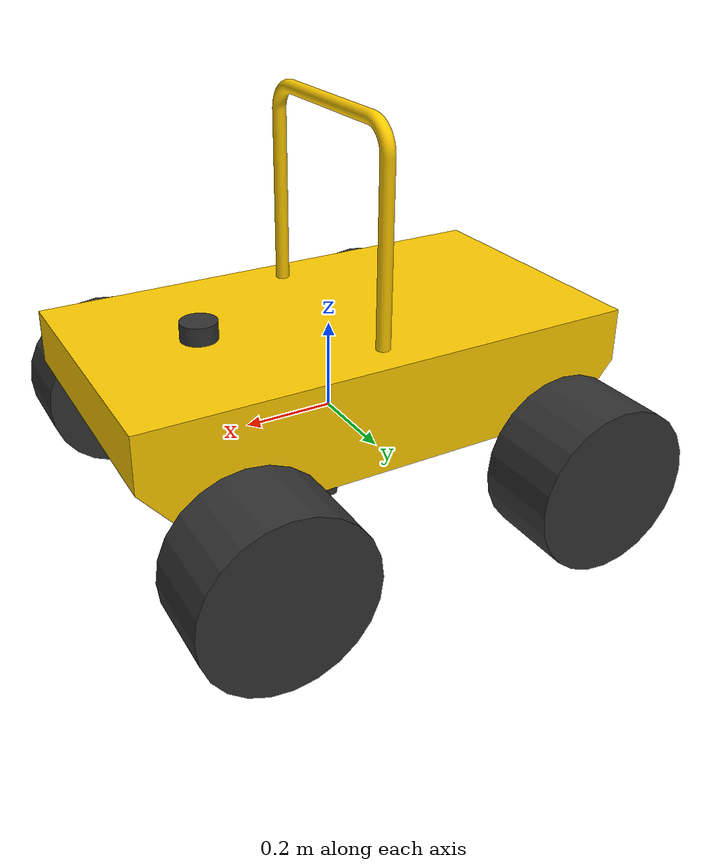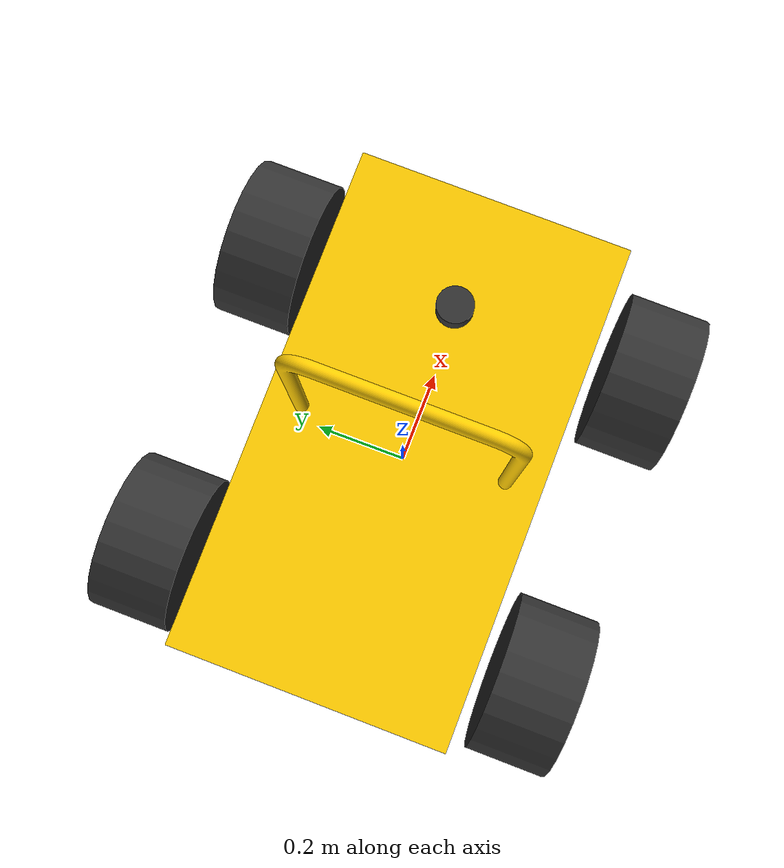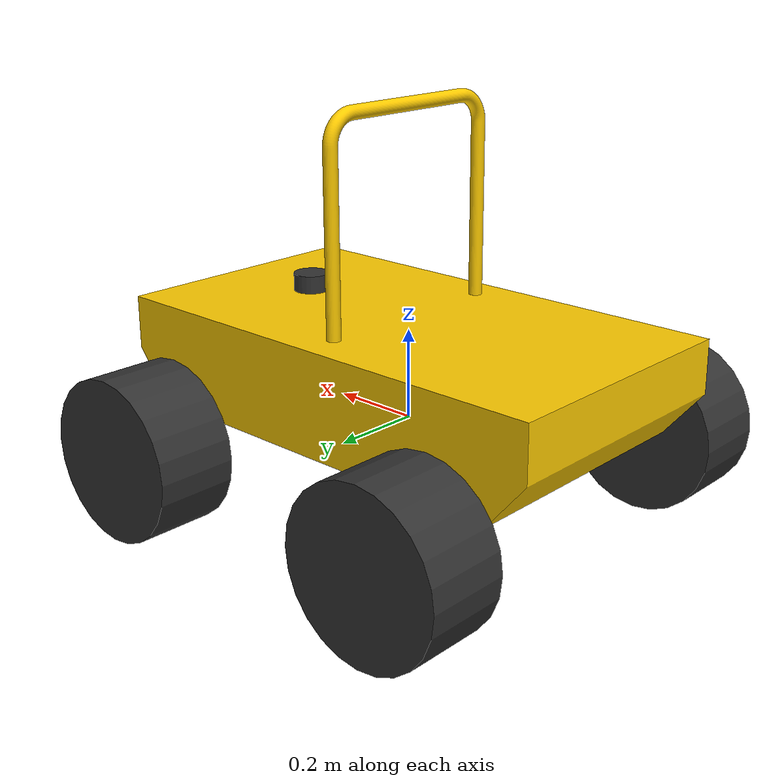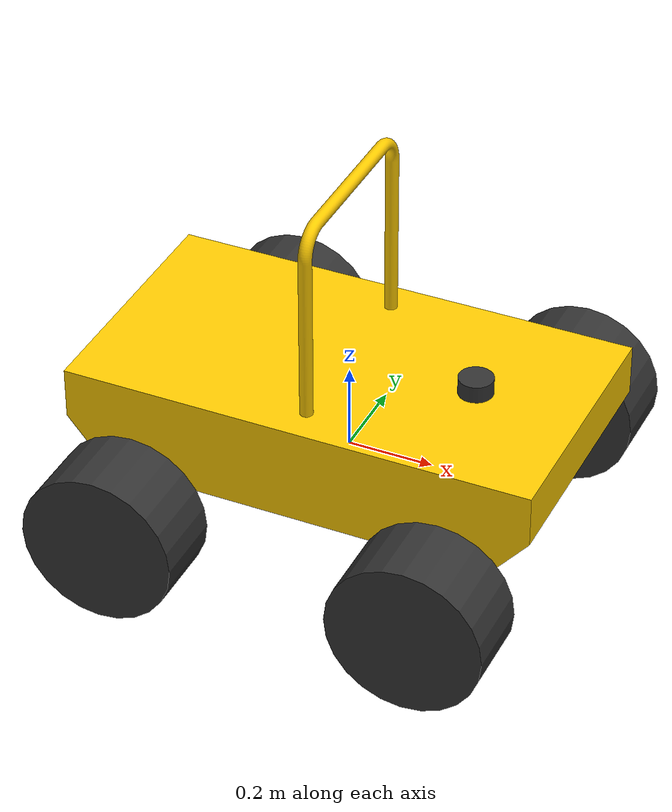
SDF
<?xml version='1.0' ?>
<sdf version='1.9'>
    <model name='wildthumper_with_lidar'>
        <static>0</static>
        <self_collide>0</self_collide>

        <link name='base_link'>
            <inertial>
                <pose>0 0 0 0 0 0</pose>
                <mass>0.01</mass>
                <inertia>
                    <ixx>0.01</ixx>
                    <ixy>0</ixy>
                    <ixz>0</ixz>
                    <iyy>0.01</iyy>
                    <iyz>0</iyz>
                    <izz>0.01</izz>
                </inertia>
            </inertial>
            <collision name='base_link_collision'>
                <pose>0 0 0 0 0 0</pose>
                <geometry>
                    <box>
                        <size>0.001 0.001 0.001</size>
                    </box>
                </geometry>
            </collision>
            <visual name='base_link_visual'>
                <pose>0 0 0 0 0 0</pose>
                <geometry>
                    <box>
                        <size>0.001 0.001 0.001</size>
                    </box>
                </geometry>
                <material>
                    <diffuse>1 0.3125 0 1</diffuse>
                    <ambient>1 0.3125 0 1</ambient>
                </material>
            </visual>
        </link>

        <joint name='chassis_link_baselink_joint' type='fixed'>
            <pose relative_to='base_link'>0 0 0 0 0 0</pose>
            <parent>base_link</parent>
            <child>chassis_link</child>
        </joint>

        <link name="chassis_link">
            <pose>0 0 0 0 0 0</pose>
            <visual name="chassis_visual">
                <pose>0 0 0 0 0 0</pose>
                <geometry>
                    <mesh>
                        <uri>model://rover_with_lidar/meshes/chassis_simple.stl</uri>
                    </mesh>
                </geometry>
                <material>
                    <ambient>1 1 0 1</ambient>
                    <diffuse>1 0.8 0 1</diffuse>
                    <specular>1 1 1 1</specular>
                    <emissive>0.5 0.5 0 1</emissive>
                </material>
            </visual>
            <collision name="chassis_collision">
                <pose>0 0 0 0 0 0</pose>
                <geometry>
                    <mesh>
                        <uri>model://rover_with_lidar/meshes/chassis_simple.stl</uri>
                    </mesh>
                </geometry>
            </collision>
            <inertial>
                <pose>0 0 0.116 0 0 0</pose>
                <mass>76.476</mass>
                <inertia>
                    <ixx>3.032</ixx>
                    <ixy>-0.001</ixy>
                    <ixz>-0.077</ixz>
                    <iyy>9.132</iyy>
                    <iyz>-0.003</iyz>
                    <izz>11.061</izz>
                </inertia>
            </inertial>
        </link>

        <!-- Wheels -->
        <!-- front right wheel-->
        <joint name='front_right_wheel_joint' type='revolute'>
            <pose relative_to='chassis_link'>0.362 -0.441 -0.043 0 0 0</pose>
            <parent>chassis_link</parent>
            <child>front_right_wheel_link</child>
            <axis>
                <xyz expressed_in='front_right_wheel_link'>0 1 0</xyz>
                <limit>
                    <lower>-1.79769e+308</lower>
                    <upper>1.79769e+308</upper>
                </limit>
                <dynamics>
                    <damping>0.02</damping>
                </dynamics>
            </axis>
        </joint>

        <link name="front_right_wheel_link">
            <pose relative_to='front_right_wheel_joint'>0 0 0 0 0 0</pose>
            <visual name="front_right_wheel_visual">
                <pose>0 0 0 1.57 0 0</pose>
                <geometry>
                    <cylinder>
                        <radius>0.18</radius>
                        <length>0.18</length>
                    </cylinder>
                </geometry>
                <material>
                    <ambient>0.1 0.1 0.1 1</ambient>
                    <diffuse>0.2 0.2 0.2 1</diffuse>
                    <specular>0.05 0.05 0.05 1</specular>
                    <emissive>0 0 0 1</emissive>
                </material>
            </visual>
            <collision name="front_right_wheel_collision">
                <pose>0 0 0 1.57 0 0</pose>
                <geometry>
                    <cylinder>
                        <radius>0.18</radius>
                        <length>0.18</length>
                    </cylinder>
                </geometry>
                <surface>
                    <friction>
                        <ode>
                            <mu>10</mu>
                            <mu2>5</mu2>
                            <fdir1>1 0 0</fdir1>
                            <slip1>0.002</slip1>
                            <slip2>0.002</slip2>
                        </ode>
                    </friction>
                </surface>
            </collision>
            <inertial>
                <pose>0 0 0 0 0 1.57</pose>
                <mass>8</mass>
                <inertia>
                    <ixx>0.12</ixx>
                    <ixy>0</ixy>
                    <ixz>0</ixz>
                    <iyy>0.076</iyy>
                    <iyz>0</iyz>
                    <izz>0.076</izz>
                </inertia>
            </inertial>
        </link>

        <!-- front left wheel -->
        <joint name='front_left_wheel_joint' type='revolute'>
            <pose relative_to='chassis_link'>0.362 0.441 -0.043 0 0 0</pose>
            <parent>chassis_link</parent>
            <child>front_left_wheel_link</child>
            <axis>
                <xyz expressed_in='front_left_wheel_link'>0 1 0</xyz>
                <limit>
                    <lower>-1.79769e+308</lower>
                    <upper>1.79769e+308</upper>
                </limit>
                <dynamics>
                    <damping>0.02</damping>
                </dynamics>
            </axis>
        </joint>

        <link name="front_left_wheel_link">
            <pose relative_to='front_left_wheel_joint'>0 0 0 0 0 0</pose>
            <visual name="front_left_wheel_visual">
                <pose>0 0 0 1.57 0 0</pose>
                <geometry>
                    <cylinder>
                        <radius>0.18</radius>
                        <length>0.18</length>
                    </cylinder>
                </geometry>
                <material>
                    <ambient>0.1 0.1 0.1 1</ambient>
                    <diffuse>0.2 0.2 0.2 1</diffuse>
                    <specular>0.05 0.05 0.05 1</specular>
                    <emissive>0 0 0 1</emissive>
                </material>
            </visual>
            <collision name="front_left_wheel_collision">
                <pose>0 0 0 1.57 0 0</pose>
                <geometry>
                    <cylinder>
                        <radius>0.18</radius>
                        <length>0.18</length>
                    </cylinder>
                </geometry>
                <surface>
                    <friction>
                        <ode>
                            <mu>10</mu>
                            <mu2>5</mu2>
                            <fdir1>1 0 0</fdir1>
                            <slip1>0.002</slip1>
                            <slip2>0.002</slip2>
                        </ode>
                    </friction>
                </surface>
            </collision>
            <inertial>
                <pose>0 0 0 0 0 1.57</pose>
                <mass>8</mass>
                <inertia>
                    <ixx>0.12</ixx>
                    <ixy>0</ixy>
                    <ixz>0</ixz>
                    <iyy>0.076</iyy>
                    <iyz>0</iyz>
                    <izz>0.076</izz>
                </inertia>
            </inertial>
        </link>

        <!-- back right wheel -->
        <joint name='back_right_wheel_joint' type='revolute'>
            <pose relative_to='chassis_link'>-0.362 -0.441 -0.043 0 0 0</pose>
            <parent>chassis_link</parent>
            <child>back_right_wheel_link</child>
            <axis>
                <xyz expressed_in='chassis_link'>0 1 0</xyz>
                <limit>
                    <lower>-1.79769e+308</lower>
                    <upper>1.79769e+308</upper>
                </limit>
                <dynamics>
                    <damping>0.02</damping>
                </dynamics>
            </axis>
        </joint>

        <link name="back_right_wheel_link">
            <pose relative_to='back_right_wheel_joint'>0 0 0 0 0 0</pose>
            <visual name="back_right_wheel_visual">
                <pose>0 0 0 1.57 0 0</pose>
                <geometry>
                    <cylinder>
                        <radius>0.18</radius>
                        <length>0.18</length>
                    </cylinder>
                </geometry>
                <material>
                    <ambient>0.1 0.1 0.1 1</ambient>
                    <diffuse>0.2 0.2 0.2 1</diffuse>
                    <specular>0.05 0.05 0.05 1</specular>
                    <emissive>0 0 0 1</emissive>
                </material>
            </visual>
            <collision name="back_right_wheel_collision">
                <pose>0 0 0 1.57 0 0</pose>
                <geometry>
                    <cylinder>
                        <radius>0.18</radius>
                        <length>0.18</length>
                    </cylinder>
                </geometry>
                <surface>
                    <friction>
                        <ode>
                            <mu>10</mu>
                            <mu2>5</mu2>
                            <fdir1>1 0 0</fdir1>
                            <slip1>0.002</slip1>
                            <slip2>0.002</slip2>
                        </ode>
                    </friction>
                </surface>
            </collision>
            <inertial>
                <pose>0 0 0 0 0 1.57</pose>
                <mass>8</mass>
                <inertia>
                    <ixx>0.12</ixx>
                    <ixy>0</ixy>
                    <ixz>0</ixz>
                    <iyy>0.076</iyy>
                    <iyz>0</iyz>
                    <izz>0.076</izz>
                </inertia>
            </inertial>
        </link>

        <!-- back left wheel -->
        <joint name='back_left_wheel_joint' type='revolute'>
            <pose relative_to='chassis_link'>-0.362 0.441 -0.043 0 0 0</pose>
            <parent>chassis_link</parent>
            <child>back_left_wheel_link</child>
            <axis>
                <xyz expressed_in='chassis_link'>0 1 0</xyz>
                <limit>
                    <lower>-1.79769e+308</lower>
                    <upper>1.79769e+308</upper>
                </limit>
                <dynamics>
                    <damping>0.02</damping>
                </dynamics>
            </axis>
        </joint>

        <link name="back_left_wheel_link">
            <pose relative_to='back_left_wheel_joint'>0 0 0 0 0 0</pose>
            <visual name="back_left_wheel_visual">
                <pose>0 0 0 1.57 0 0</pose>
                <geometry>
                    <cylinder>
                        <radius>0.18</radius>
                        <length>0.18</length>
                    </cylinder>
                </geometry>
                <material>
                    <ambient>0.1 0.1 0.1 1</ambient>
                    <diffuse>0.2 0.2 0.2 1</diffuse>
                    <specular>0.05 0.05 0.05 1</specular>
                    <emissive>0 0 0 1</emissive>
                </material>
            </visual>
            <collision name="back_left_wheel_collision">
                <pose>0 0 0 1.57 0 0</pose>
                <geometry>
                    <cylinder>
                        <radius>0.18</radius>
                        <length>0.18</length>
                    </cylinder>
                </geometry>
                <surface>
                    <friction>
                        <ode>
                            <mu>10</mu>
                            <mu2>5</mu2>
                            <fdir1>1 0 0</fdir1>
                            <slip1>0.002</slip1>
                            <slip2>0.002</slip2>
                        </ode>
                    </friction>
                </surface>
            </collision>
            <inertial>
                <pose>0 0 0 0 0 1.57</pose>
                <mass>8</mass>
                <inertia>
                    <ixx>0.12</ixx>
                    <ixy>0</ixy>
                    <ixz>0</ixz>
                    <iyy>0.076</iyy>
                    <iyz>0</iyz>
                    <izz>0.076</izz>
                </inertia>
            </inertial>
        </link>

        <!-- sensors -->
        <link name='imu_link'>
            <pose relative_to='imu_joint'>0 0 0 0 0 0 </pose>
            <visual name='visual'>
                <pose>0 0 0 0 0 0</pose>
                <geometry>
                    <cylinder>
                        <radius>0.02</radius>
                        <length>0.02</length>
                    </cylinder>
                </geometry>
                <material>
                    <ambient>0.1 0.1 0.1 1</ambient>
                    <diffuse>0.2 0.2 0.2 1</diffuse>
                    <specular>0.05 0.05 0.05 1</specular>
                    <emissive>0 0 0 1</emissive>
                </material>
            </visual>
            <inertial>
                <pose>0 0 0 0 0 0</pose>
                <mass>0.15</mass>
                <inertia>
                    <ixx>0.00002</ixx>
                    <ixy>0</ixy>
                    <ixz>0</ixz>
                    <iyy>0.00002</iyy>
                    <iyz>0</iyz>
                    <izz>0.00002</izz>
                </inertia>
            </inertial>
            <sensor name="imu_sensor" type="imu">
                <pose degrees="true">0 0 0 180 0 0</pose>
                <always_on>1</always_on>
                <update_rate>1000.0</update_rate>
            </sensor>
        </link>

        <joint name='imu_joint' type='fixed'>
            <pose relative_to='chassis_link'>0 0 -0.2225 0 0 0</pose>
            <child>imu_link</child>
            <parent>base_link</parent>
        </joint>

        <link name='base_scan'>
            <pose relative_to='base_scan_joint'>0 0 0 0 0 0</pose>
            <inertial>
                <pose>0 0 0 0 0 0</pose>
                <mass>0.15</mass>
                <inertia>
                    <ixx>9.09375e-05</ixx>
                    <ixy>0</ixy>
                    <ixz>0</ixz>
                    <iyy>9.09375e-05</iyy>
                    <iyz>0</iyz>
                    <izz>9.1875e-05</izz>
                </inertia>
            </inertial>
            <collision name='collision'>
                <pose>0 0 0 0 0 0</pose>
                <geometry>
                    <cylinder>
                        <radius>0.04</radius>
                        <length>0.04</length>
                    </cylinder>
                </geometry>
            </collision>
            <visual name='visual'>
                <pose>0 0 0 0 0 0</pose>
                <geometry>
                    <cylinder>
                        <radius>0.04</radius>
                        <length>0.04</length>
                    </cylinder>
                </geometry>
                <material>
                    <ambient>0.1 0.1 0.1 1</ambient>
                    <diffuse>0.2 0.2 0.2 1</diffuse>
                    <specular>0.05 0.05 0.05 1</specular>
                    <emissive>0 0 0 1</emissive>
                </material>
            </visual>
            <sensor name='lidar' type='gpu_lidar'>
                <gz_frame_id>base_scan</gz_frame_id>
                <pose>0 0 0.045 0 -0 0</pose>
                <always_on>1</always_on>
                <topic>lidar</topic>
                <update_rate>10</update_rate>
                <visualize>1</visualize>
                <ray>
                    <scan>
                        <horizontal>
                            <samples>360</samples>
                            <resolution>1</resolution>
                            <min_angle>-3.14159265</min_angle>
                            <max_angle>3.14159265</max_angle>
                        </horizontal>
                        <vertical>
                            <samples>1</samples>
                            <resolution>1</resolution>
                            <min_angle>0</min_angle>
                            <max_angle>0</max_angle>
                        </vertical>
                    </scan>
                    <range>
                        <min>0.1</min>
                        <max>12</max>
                        <resolution>0.05</resolution>
                    </range>
                    <noise>
                        <type>gaussian</type>
                        <mean>0</mean>
                        <stddev>0.01</stddev>
                    </noise>
                </ray>
            </sensor>
        </link>

        <joint name='base_scan_joint' type='fixed'>
            <pose relative_to='chassis_link'>0.300 0 0.251 0 0 0</pose>
            <parent>base_link</parent>
            <child>base_scan</child>
        </joint>

        <!-- plugins -->
        <plugin filename="gz-sim-joint-state-publisher-system"
            name="gz::sim::systems::JointStatePublisher">
        </plugin>

        <plugin filename="gz-sim-odometry-publisher-system"
            name="gz::sim::systems::OdometryPublisher">
            <odom_frame>gz_odom</odom_frame>
            <robot_base_frame>base_link</robot_base_frame>
            <dimensions>3</dimensions>
        </plugin>

        <plugin filename="gz-sim-apply-joint-force-system"
            name="gz::sim::systems::ApplyJointForce">
            <joint_name>front_right_wheel_joint</joint_name>
        </plugin>

        <plugin filename="gz-sim-apply-joint-force-system"
            name="gz::sim::systems::ApplyJointForce">
            <joint_name>front_left_wheel_joint</joint_name>
        </plugin>

        <plugin filename="gz-sim-apply-joint-force-system"
            name="gz::sim::systems::ApplyJointForce">
            <joint_name>back_right_wheel_joint</joint_name>
        </plugin>

        <plugin filename="gz-sim-apply-joint-force-system"
            name="gz::sim::systems::ApplyJointForce">
            <joint_name>back_left_wheel_joint</joint_name>
        </plugin>

        <plugin name="ArduPilotPlugin" filename="ArduPilotPlugin">
            <!-- Port settings -->
            <fdm_addr>127.0.0.1</fdm_addr>
            <fdm_port_in>9002</fdm_port_in>
            <connectionTimeoutMaxCount>5</connectionTimeoutMaxCount>
            <lock_step>1</lock_step>

            <modelXYZToAirplaneXForwardZDown degrees="true">0 0 0 180 0 0</modelXYZToAirplaneXForwardZDown>
            <gazeboXYZToNED degrees="true">0 0 0 180 0 90</gazeboXYZToNED>

            <!-- Sensors -->
            <imuName>imu_sensor</imuName>

            <control channel="0">
                <jointName>front_left_wheel_joint</jointName>
                <useForce>1</useForce>
                <multiplier>92.6</multiplier>
                <offset>-0.5</offset>
                <servo_min>1000</servo_min>
                <servo_max>2000</servo_max>
                <type>VELOCITY</type>
                <p_gain>0.8</p_gain>
                <i_gain>0.12</i_gain>
                <d_gain>0.0002</d_gain>
                <i_max>1</i_max>
                <i_min>-1</i_min>
                <cmd_max>-1</cmd_max>
                <cmd_min>0</cmd_min>
            </control>

            <control channel="0">
                <jointName>back_left_wheel_joint</jointName>
                <useForce>1</useForce>
                <multiplier>92.6</multiplier>
                <offset>-0.5</offset>
                <servo_min>1000</servo_min>
                <servo_max>2000</servo_max>
                <type>VELOCITY</type>
                <p_gain>0.8</p_gain>
                <i_gain>0.12</i_gain>
                <d_gain>0.0002</d_gain>
                <i_max>1</i_max>
                <i_min>-1</i_min>
                <cmd_max>-1</cmd_max>
                <cmd_min>0</cmd_min>
            </control>

            <control channel="2">
                <jointName>front_right_wheel_joint</jointName>
                <useForce>1</useForce>
                <multiplier>92.6</multiplier>
                <offset>-0.5</offset>
                <servo_min>1000</servo_min>
                <servo_max>2000</servo_max>
                <type>VELOCITY</type>
                <p_gain>0.8</p_gain>
                <i_gain>0.12</i_gain>
                <d_gain>0.0002</d_gain>
                <i_max>1</i_max>
                <i_min>-1</i_min>
                <cmd_max>-1</cmd_max>
                <cmd_min>0</cmd_min>
            </control>

            <control channel="2">
                <jointName>back_right_wheel_joint</jointName>
                <useForce>1</useForce>
                <multiplier>92.6</multiplier>
                <offset>-0.5</offset>
                <servo_min>1000</servo_min>
                <servo_max>2000</servo_max>
                <type>VELOCITY</type>
                <p_gain>0.8</p_gain>
                <i_gain>0.12</i_gain>
                <d_gain>0.0002</d_gain>
                <i_max>1</i_max>
                <i_min>-1</i_min>
                <cmd_max>-1</cmd_max>
                <cmd_min>0</cmd_min>
            </control>
        </plugin>
    </model>
</sdf>
